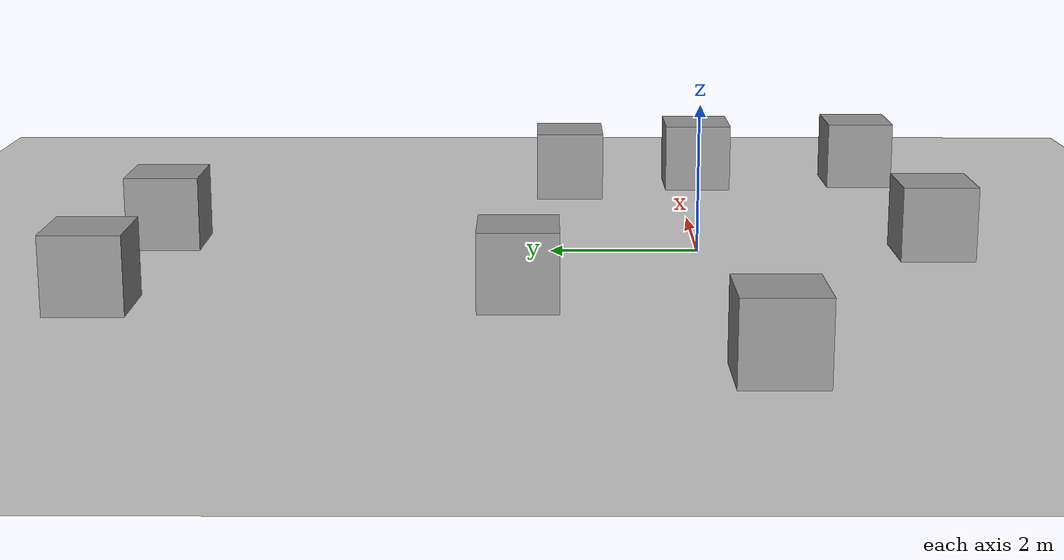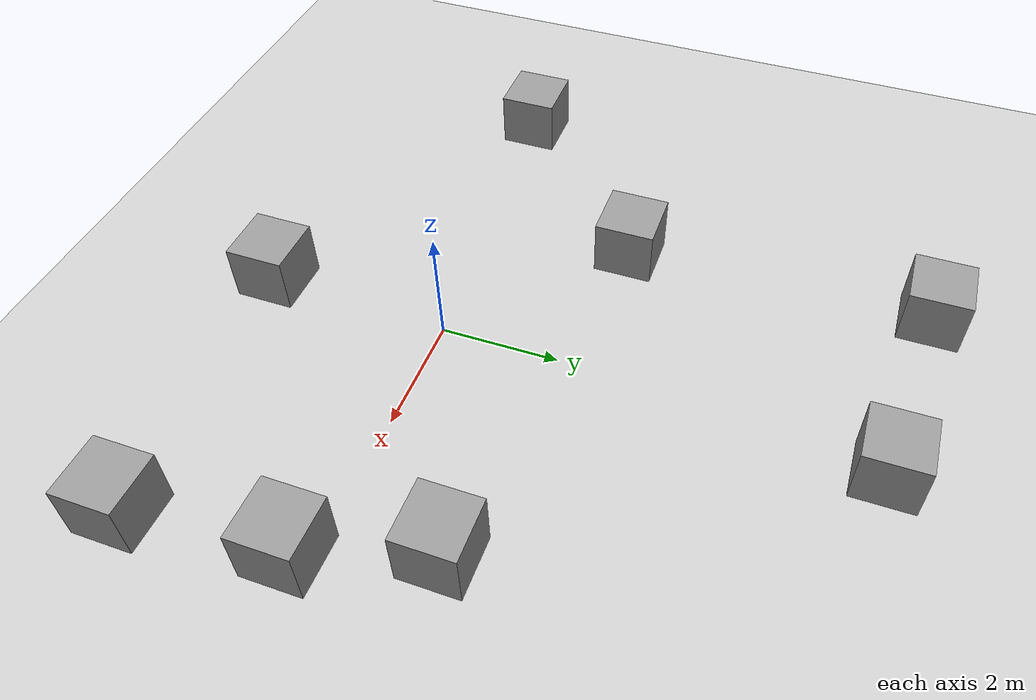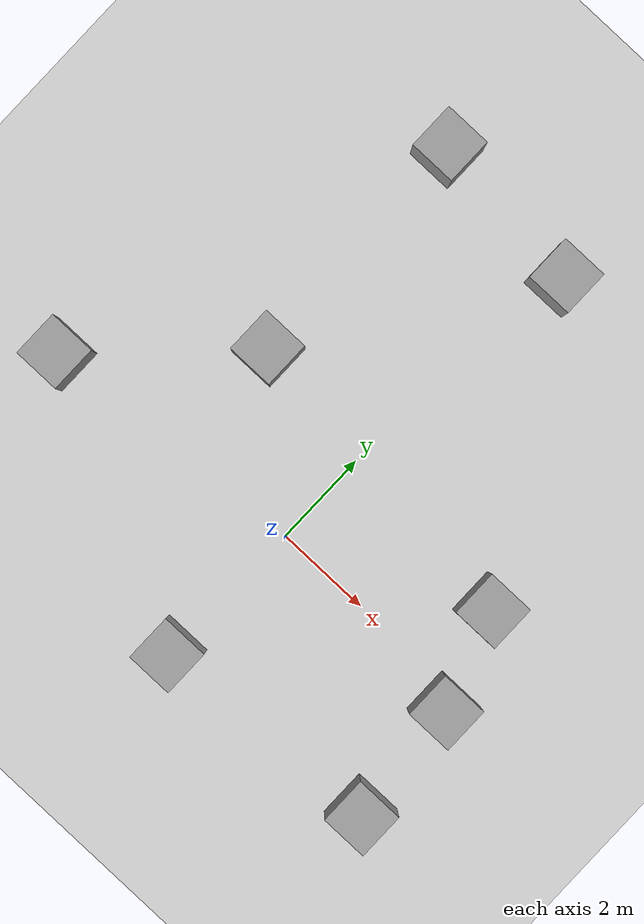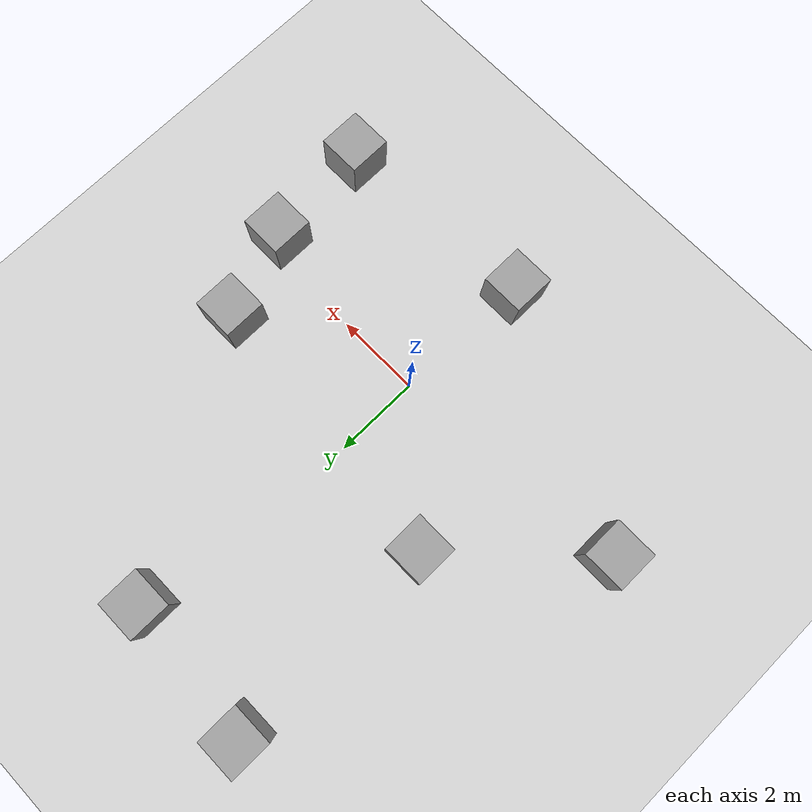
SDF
<sdf version="1.7">
 <world name="default">
  <light name="sun" type="directional">
   <pose>0 0 10 0 -0 0</pose>
   <diffuse>0.8 0.8 0.8 1</diffuse>
   <specular>0.2 0.2 0.2 1</specular>
   <attenuation>
    <range>1000</range>
    <constant>0.9</constant>
    <linear>0.01</linear>
    <quadratic>0.001</quadratic>
   </attenuation>
   <direction>-0.5 0.1 -0.9</direction>
   <spot><inner_angle>0</inner_angle><outer_angle>0</outer_angle><falloff>0</falloff></spot>
  </light>
  <model name="ground_plane">
   <static>1</static>
   <link name="link">
    <collision name="collision">
     <geometry><plane><normal>0 0 1</normal><size>100 100</size></plane></geometry>
     <surface>
      <contact><collide_bitmask>65535</collide_bitmask></contact>
      <friction><ode><mu>100</mu><mu2>50</mu2></ode></friction>
     </surface>
    </collision>
    <visual name="visual">
     <cast_shadows>0</cast_shadows>
     <geometry><plane><normal>0 0 1</normal><size>100 100</size></plane></geometry>
     <material>
      <script><uri>file://media/materials/scripts/gazebo.material</uri><name>Gazebo/Grey</name></script>
     </material>
    </visual>
   </link>
  </model>
  <gravity>0 0 -9.8</gravity>
  <magnetic_field>6e-06 2.3e-05 -4.2e-05</magnetic_field>
  <atmosphere type="adiabatic"/>
  <physics type="ode">
   <max_step_size>0.001</max_step_size>
   <real_time_factor>1</real_time_factor>
   <real_time_update_rate>1000</real_time_update_rate>
  </physics>
  <scene><ambient>0.4 0.4 0.4 1</ambient><background>0.7 0.7 0.7 1</background><shadows>1</shadows></scene>
  <audio><device>default</device></audio>
  <spherical_coordinates>
   <surface_model>EARTH_WGS84</surface_model>
   <latitude_deg>0</latitude_deg>
   <longitude_deg>0</longitude_deg>
   <elevation>0</elevation>
   <heading_deg>0</heading_deg>
  </spherical_coordinates>
  <model name="unit_box">
   <pose>4.70087 -2.88785 0.499995 0 1e-05 0</pose>
   <link name="link">
    <inertial>
     <mass>1</mass>
     <inertia>
      <ixx>0.166667</ixx>
      <ixy>0</ixy>
      <ixz>0</ixz>
      <iyy>0.166667</iyy>
      <iyz>0</iyz>
      <izz>0.166667</izz>
     </inertia>
    </inertial>
    <collision name="collision"><geometry><box><size>1 1 1</size></box></geometry></collision>
    <visual name="visual">
     <geometry><box><size>1 1 1</size></box></geometry>
     <material>
      <script><name>Gazebo/Grey</name><uri>file://media/materials/scripts/gazebo.material</uri></script>
     </material>
    </visual>
   </link>
  </model>
  <model name="unit_box_0">
   <pose>-0.101427 -3.15406 0.499995 -1e-05 -0 -0</pose>
   <link name="link">
    <inertial>
     <mass>1</mass>
     <inertia>
      <ixx>0.166667</ixx>
      <ixy>0</ixy>
      <ixz>0</ixz>
      <iyy>0.166667</iyy>
      <iyz>0</iyz>
      <izz>0.166667</izz>
     </inertia>
    </inertial>
    <collision name="collision"><geometry><box><size>1 1 1</size></box></geometry></collision>
    <visual name="visual">
     <geometry><box><size>1 1 1</size></box></geometry>
     <material>
      <script><name>Gazebo/Grey</name><uri>file://media/materials/scripts/gazebo.material</uri></script>
     </material>
    </visual>
   </link>
  </model>
  <model name="unit_box_1">
   <pose>-2.70247 2.41078 0.499995 0 1e-05 0</pose>
   <link name="link">
    <inertial>
     <mass>1</mass>
     <inertia>
      <ixx>0.166667</ixx>
      <ixy>0</ixy>
      <ixz>0</ixz>
      <iyy>0.166667</iyy>
      <iyz>0</iyz>
      <izz>0.166667</izz>
     </inertia>
    </inertial>
    <collision name="collision"><geometry><box><size>1 1 1</size></box></geometry></collision>
    <visual name="visual">
     <geometry><box><size>1 1 1</size></box></geometry>
     <material>
      <script><name>Gazebo/Grey</name><uri>file://media/materials/scripts/gazebo.material</uri></script>
     </material>
    </visual>
   </link>
  </model>
  <model name="unit_box_2">
   <pose>3.83454 1.67959 0.499995 -1e-05 -0 -0</pose>
   <link name="link">
    <inertial>
     <mass>1</mass>
     <inertia>
      <ixx>0.166667</ixx>
      <ixy>0</ixy>
      <ixz>0</ixz>
      <iyy>0.166667</iyy>
      <iyz>0</iyz>
      <izz>0.166667</izz>
     </inertia>
    </inertial>
    <collision name="collision"><geometry><box><size>1 1 1</size></box></geometry></collision>
    <visual name="visual">
     <geometry><box><size>1 1 1</size></box></geometry>
     <material>
      <script><name>Gazebo/Grey</name><uri>file://media/materials/scripts/gazebo.material</uri></script>
     </material>
    </visual>
   </link>
  </model>
  <model name="unit_box_3">
   <pose>4.50657 -0.328809 0.499995 0 1e-05 0</pose>
   <link name="link">
    <inertial>
     <mass>1</mass>
     <inertia>
      <ixx>0.166667</ixx>
      <ixy>0</ixy>
      <ixz>0</ixz>
      <iyy>0.166667</iyy>
      <iyz>0</iyz>
      <izz>0.166667</izz>
     </inertia>
    </inertial>
    <collision name="collision"><geometry><box><size>1 1 1</size></box></geometry></collision>
    <visual name="visual">
     <geometry><box><size>1 1 1</size></box></geometry>
     <material>
      <script><name>Gazebo/Grey</name><uri>file://media/materials/scripts/gazebo.material</uri></script>
     </material>
    </visual>
   </link>
  </model>
  <model name="unit_box_4">
   <pose>-5.59771 -0.406786 0.499995 -1e-05 -0 -0</pose>
   <link name="link">
    <inertial>
     <mass>1</mass>
     <inertia>
      <ixx>0.166667</ixx>
      <ixy>0</ixy>
      <ixz>0</ixz>
      <iyy>0.166667</iyy>
      <iyz>0</iyz>
      <izz>0.166667</izz>
     </inertia>
    </inertial>
    <collision name="collision"><geometry><box><size>1 1 1</size></box></geometry></collision>
    <visual name="visual">
     <geometry><box><size>1 1 1</size></box></geometry>
     <material>
      <script><name>Gazebo/Grey</name><uri>file://media/materials/scripts/gazebo.material</uri></script>
     </material>
    </visual>
   </link>
  </model>
  <model name="unit_box_5">
   <pose>-2.81611 7.58666 0.499995 0 1e-05 0</pose>
   <link name="link">
    <inertial>
     <mass>1</mass>
     <inertia>
      <ixx>0.166667</ixx>
      <ixy>0</ixy>
      <ixz>0</ixz>
      <iyy>0.166667</iyy>
      <iyz>0</iyz>
      <izz>0.166667</izz>
     </inertia>
    </inertial>
    <collision name="collision"><geometry><box><size>1 1 1</size></box></geometry></collision>
    <visual name="visual">
     <geometry><box><size>1 1 1</size></box></geometry>
     <material>
      <script><name>Gazebo/Grey</name><uri>file://media/materials/scripts/gazebo.material</uri></script>
     </material>
    </visual>
   </link>
  </model>
  <model name="unit_box_6">
   <pose>0.50703 7.26936 0.499995 -1e-05 -0 0</pose>
   <link name="link">
    <inertial>
     <mass>1</mass>
     <inertia>
      <ixx>0.166667</ixx>
      <ixy>0</ixy>
      <ixz>0</ixz>
      <iyy>0.166667</iyy>
      <iyz>0</iyz>
      <izz>0.166667</izz>
     </inertia>
    </inertial>
    <collision name="collision"><geometry><box><size>1 1 1</size></box></geometry></collision>
    <visual name="visual">
     <geometry><box><size>1 1 1</size></box></geometry>
     <material>
      <script><name>Gazebo/Grey</name><uri>file://media/materials/scripts/gazebo.material</uri></script>
     </material>
    </visual>
   </link>
  </model>
 </world>
</sdf>
